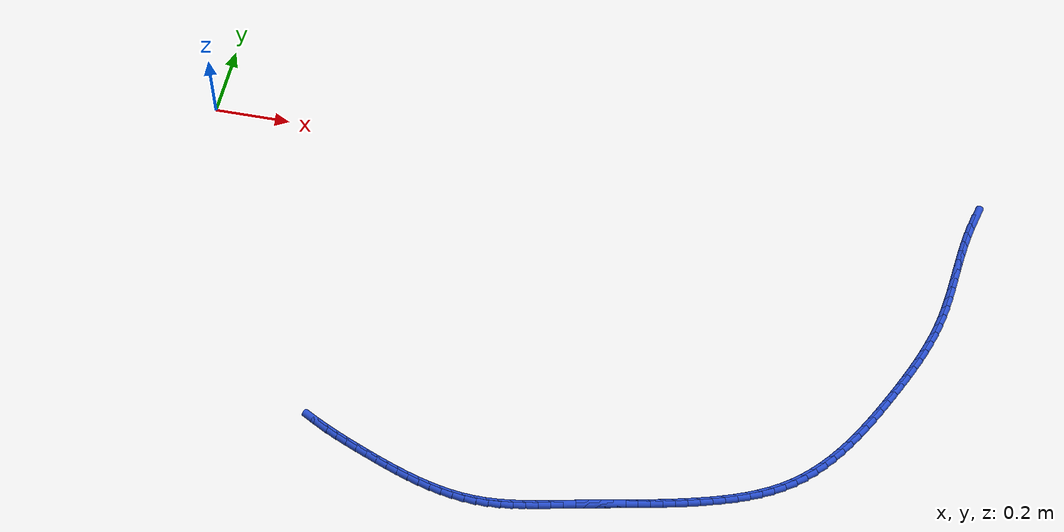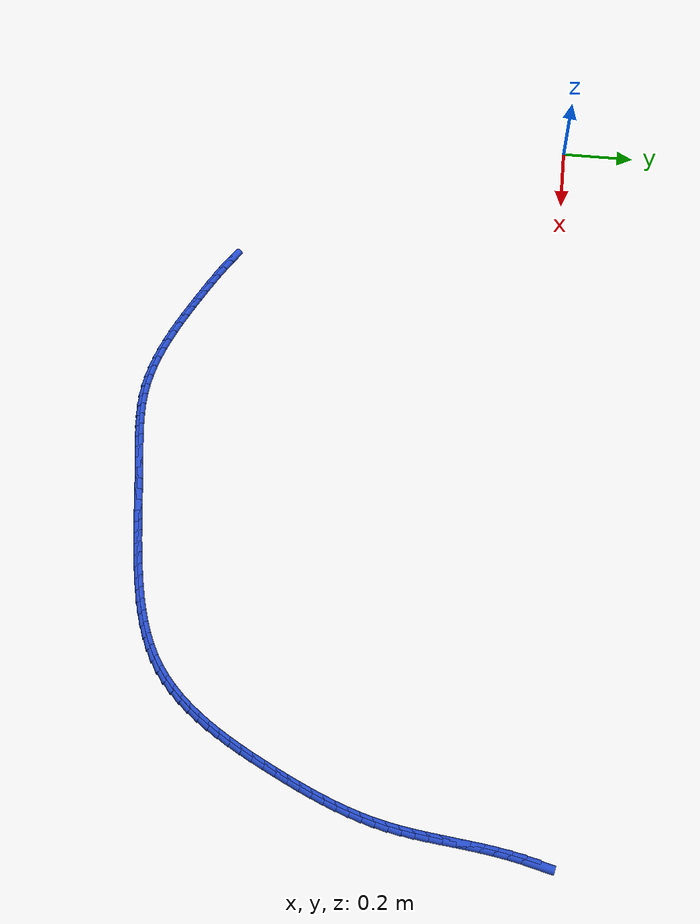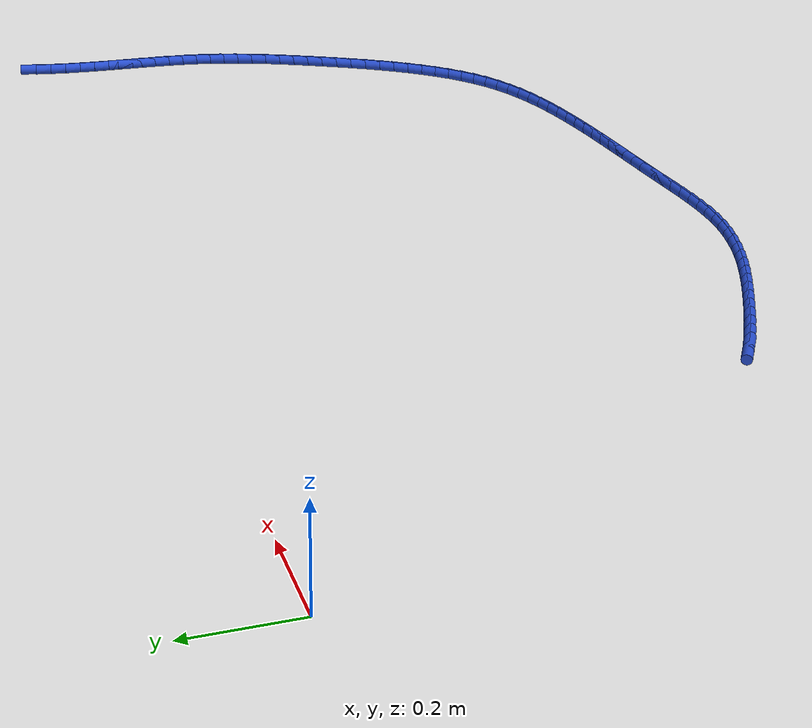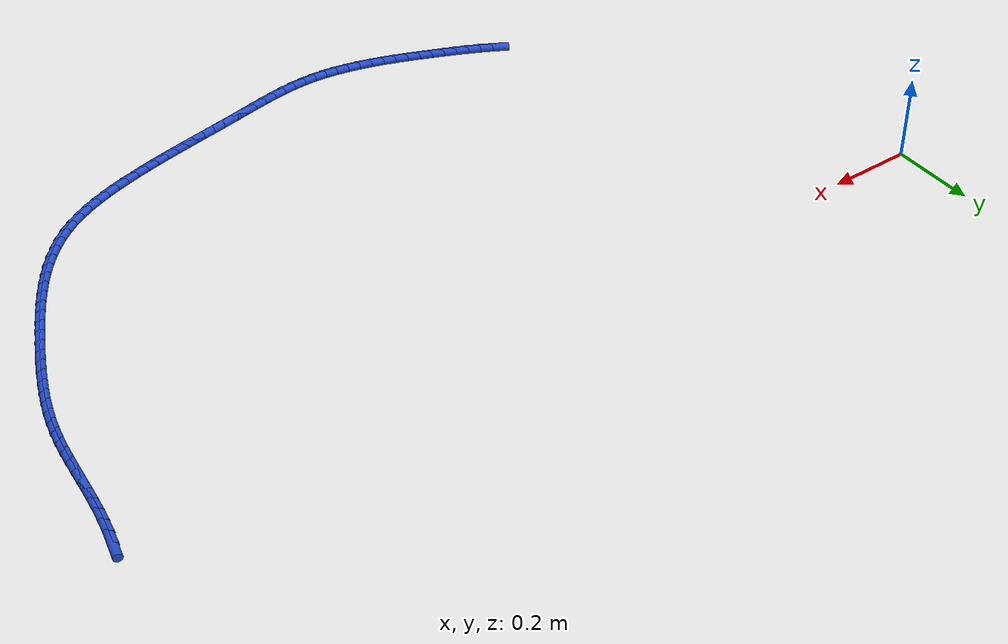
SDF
<sdf version="1.6">
 <world name="default">
  <model name="ground_plane">
   <static>1</static>
   <link name="link">
    <collision name="collision">
     <geometry><plane><normal>0 0 1</normal><size>100 100</size></plane></geometry>
     <surface><friction><ode><mu>100</mu><mu2>50</mu2></ode></friction></surface>
    </collision>
    <visual name="visual">
     <cast_shadows>0</cast_shadows>
     <geometry><plane><normal>0 0 1</normal><size>100 100</size></plane></geometry>
     <material>
      <script><uri>file://media/materials/scripts/gazebo.material</uri><name>Gazebo/WhiteGlow</name></script>
     </material>
    </visual>
   </link>
  </model>
  <model name="line">
   <link name="link_111">
    <pose>2.010761680877642 0.033383694866165735 0.01 0 1.57 1.359193978464656</pose>
    <collision name="collision">
     <geometry><cylinder><radius>0.01</radius><length>0.08</length></cylinder></geometry>
    </collision>
    <visual name="visual">
     <material>
      <script><name>Gazebo/Blue</name><uri>file://media/materials/scripts/gazebo.material</uri></script>
     </material>
     <geometry><cylinder><radius>0.01</radius><length>0.08</length></cylinder></geometry>
    </visual>
   </link>
   <link name="link_112">
    <pose>2.004196010375929 0.0028198427151513482 0.01 0 1.57 1.3987992610291267</pose>
    <collision name="collision">
     <geometry><cylinder><radius>0.01</radius><length>0.08</length></cylinder></geometry>
    </collision>
    <visual name="visual">
     <material>
      <script><name>Gazebo/Blue</name><uri>file://media/materials/scripts/gazebo.material</uri></script>
     </material>
     <geometry><cylinder><radius>0.01</radius><length>0.08</length></cylinder></geometry>
    </visual>
   </link>
   <link name="link_113">
    <pose>1.9989166863114858 -0.02757115076730311 0.01 0 1.57 1.431426548766819</pose>
    <collision name="collision">
     <geometry><cylinder><radius>0.01</radius><length>0.08</length></cylinder></geometry>
    </collision>
    <visual name="visual">
     <material>
      <script><name>Gazebo/Blue</name><uri>file://media/materials/scripts/gazebo.material</uri></script>
     </material>
     <geometry><cylinder><radius>0.01</radius><length>0.08</length></cylinder></geometry>
    </visual>
   </link>
   <link name="link_114">
    <pose>1.9946778153561573 -0.05778853523042794 0.01 0 1.57 1.456608226791528</pose>
    <collision name="collision">
     <geometry><cylinder><radius>0.01</radius><length>0.08</length></cylinder></geometry>
    </collision>
    <visual name="visual">
     <material>
      <script><name>Gazebo/Blue</name><uri>file://media/materials/scripts/gazebo.material</uri></script>
     </material>
     <geometry><cylinder><radius>0.01</radius><length>0.08</length></cylinder></geometry>
    </visual>
   </link>
   <link name="link_115">
    <pose>1.991232252472129 -0.08783172164562261 0.01 0 1.57 1.474027032831705</pose>
    <collision name="collision">
     <geometry><cylinder><radius>0.01</radius><length>0.08</length></cylinder></geometry>
    </collision>
    <visual name="visual">
     <material>
      <script><name>Gazebo/Blue</name><uri>file://media/materials/scripts/gazebo.material</uri></script>
     </material>
     <geometry><cylinder><radius>0.01</radius><length>0.08</length></cylinder></geometry>
    </visual>
   </link>
   <link name="link_116">
    <pose>1.9883328526215855 -0.11770012098428875 0.01 0 1.57 1.483443671324782</pose>
    <collision name="collision">
     <geometry><cylinder><radius>0.01</radius><length>0.08</length></cylinder></geometry>
    </collision>
    <visual name="visual">
     <material>
      <script><name>Gazebo/Blue</name><uri>file://media/materials/scripts/gazebo.material</uri></script>
     </material>
     <geometry><cylinder><radius>0.01</radius><length>0.08</length></cylinder></geometry>
    </visual>
   </link>
   <link name="link_117">
    <pose>1.9857324707667123 -0.1473931442178274 0.01 0 1.57 1.4846697103825577</pose>
    <collision name="collision">
     <geometry><cylinder><radius>0.01</radius><length>0.08</length></cylinder></geometry>
    </collision>
    <visual name="visual">
     <material>
      <script><name>Gazebo/Blue</name><uri>file://media/materials/scripts/gazebo.material</uri></script>
     </material>
     <geometry><cylinder><radius>0.01</radius><length>0.08</length></cylinder></geometry>
    </visual>
   </link>
   <link name="link_118">
    <pose>1.9831839618696931 -0.17691020231764013 0.01 0 1.57 1.477552376540685</pose>
    <collision name="collision">
     <geometry><cylinder><radius>0.01</radius><length>0.08</length></cylinder></geometry>
    </collision>
    <visual name="visual">
     <material>
      <script><name>Gazebo/Blue</name><uri>file://media/materials/scripts/gazebo.material</uri></script>
     </material>
     <geometry><cylinder><radius>0.01</radius><length>0.08</length></cylinder></geometry>
    </visual>
   </link>
   <link name="link_119">
    <pose>1.9804401808927143 -0.20625070625512643 0.01 0 1.57 1.4619744736529625</pose>
    <collision name="collision">
     <geometry><cylinder><radius>0.01</radius><length>0.08</length></cylinder></geometry>
    </collision>
    <visual name="visual">
     <material>
      <script><name>Gazebo/Blue</name><uri>file://media/materials/scripts/gazebo.material</uri></script>
     </material>
     <geometry><cylinder><radius>0.01</radius><length>0.08</length></cylinder></geometry>
    </visual>
   </link>
   <link name="link_120">
    <pose>1.9772539827979605 -0.23541406700168802 0.01 0 1.57 1.437871611948864</pose>
    <collision name="collision">
     <geometry><cylinder><radius>0.01</radius><length>0.08</length></cylinder></geometry>
    </collision>
    <visual name="visual">
     <material>
      <script><name>Gazebo/Blue</name><uri>file://media/materials/scripts/gazebo.material</uri></script>
     </material>
     <geometry><cylinder><radius>0.01</radius><length>0.08</length></cylinder></geometry>
    </visual>
   </link>
   <link name="link_121">
    <pose>1.973378222547617 -0.2643996955287259 0.01 0 1.57 1.405267717027156</pose>
    <collision name="collision">
     <geometry><cylinder><radius>0.01</radius><length>0.08</length></cylinder></geometry>
    </collision>
    <visual name="visual">
     <material>
      <script><name>Gazebo/Blue</name><uri>file://media/materials/scripts/gazebo.material</uri></script>
     </material>
     <geometry><cylinder><radius>0.01</radius><length>0.08</length></cylinder></geometry>
    </visual>
   </link>
   <link name="link_122">
    <pose>1.9685657551038684 -0.29320700280764167 0.01 0 1.57 1.365035232388028</pose>
    <collision name="collision">
     <geometry><cylinder><radius>0.01</radius><length>0.08</length></cylinder></geometry>
    </collision>
    <visual name="visual">
     <material>
      <script><name>Gazebo/Blue</name><uri>file://media/materials/scripts/gazebo.material</uri></script>
     </material>
     <geometry><cylinder><radius>0.01</radius><length>0.08</length></cylinder></geometry>
    </visual>
   </link>
   <link name="link_123">
    <pose>1.962590288352342 -0.32183680163264944 0.01 0 1.57 1.3244936096311462</pose>
    <collision name="collision">
     <geometry><cylinder><radius>0.01</radius><length>0.08</length></cylinder></geometry>
    </collision>
    <visual name="visual">
     <material>
      <script><name>Gazebo/Blue</name><uri>file://media/materials/scripts/gazebo.material</uri></script>
     </material>
     <geometry><cylinder><radius>0.01</radius><length>0.08</length></cylinder></geometry>
    </visual>
   </link>
   <link name="link_124">
    <pose>1.9554334571411836 -0.35030388253881606 0.01 0 1.57 1.287813616392894</pose>
    <collision name="collision">
     <geometry><cylinder><radius>0.01</radius><length>0.08</length></cylinder></geometry>
    </collision>
    <visual name="visual">
     <material>
      <script><name>Gazebo/Blue</name><uri>file://media/materials/scripts/gazebo.material</uri></script>
     </material>
     <geometry><cylinder><radius>0.01</radius><length>0.08</length></cylinder></geometry>
    </visual>
   </link>
   <link name="link_125">
    <pose>1.9471962969674856 -0.37863106268415303 0.01 0 1.57 1.2550672400567395</pose>
    <collision name="collision">
     <geometry><cylinder><radius>0.01</radius><length>0.08</length></cylinder></geometry>
    </collision>
    <visual name="visual">
     <material>
      <script><name>Gazebo/Blue</name><uri>file://media/materials/scripts/gazebo.material</uri></script>
     </material>
     <geometry><cylinder><radius>0.01</radius><length>0.08</length></cylinder></geometry>
    </visual>
   </link>
   <link name="link_126">
    <pose>1.9379812646465417 -0.4068412547737689 0.01 0 1.57 1.226228326327749</pose>
    <collision name="collision">
     <geometry><cylinder><radius>0.01</radius><length>0.08</length></cylinder></geometry>
    </collision>
    <visual name="visual">
     <material>
      <script><name>Gazebo/Blue</name><uri>file://media/materials/scripts/gazebo.material</uri></script>
     </material>
     <geometry><cylinder><radius>0.01</radius><length>0.08</length></cylinder></geometry>
    </visual>
   </link>
   <link name="link_127">
    <pose>1.9278908169936466 -0.4349573715127702 0.01 0 1.57 1.201236471448262</pose>
    <collision name="collision">
     <geometry><cylinder><radius>0.01</radius><length>0.08</length></cylinder></geometry>
    </collision>
    <visual name="visual">
     <material>
      <script><name>Gazebo/Blue</name><uri>file://media/materials/scripts/gazebo.material</uri></script>
     </material>
     <geometry><cylinder><radius>0.01</radius><length>0.08</length></cylinder></geometry>
    </visual>
   </link>
   <link name="link_128">
    <pose>1.9170274108240926 -0.463002325606265 0.01 0 1.57 1.1800105367871074</pose>
    <collision name="collision">
     <geometry><cylinder><radius>0.01</radius><length>0.08</length></cylinder></geometry>
    </collision>
    <visual name="visual">
     <material>
      <script><name>Gazebo/Blue</name><uri>file://media/materials/scripts/gazebo.material</uri></script>
     </material>
     <geometry><cylinder><radius>0.01</radius><length>0.08</length></cylinder></geometry>
    </visual>
   </link>
   <link name="link_129">
    <pose>1.9054935029531745 -0.4909990297593614 0.01 0 1.57 1.162459703419688</pose>
    <collision name="collision">
     <geometry><cylinder><radius>0.01</radius><length>0.08</length></cylinder></geometry>
    </collision>
    <visual name="visual">
     <material>
      <script><name>Gazebo/Blue</name><uri>file://media/materials/scripts/gazebo.material</uri></script>
     </material>
     <geometry><cylinder><radius>0.01</radius><length>0.08</length></cylinder></geometry>
    </visual>
   </link>
   <link name="link_130">
    <pose>1.893391550196186 -0.5189703966771668 0.01 0 1.57 1.1484920990986502</pose>
    <collision name="collision">
     <geometry><cylinder><radius>0.01</radius><length>0.08</length></cylinder></geometry>
    </collision>
    <visual name="visual">
     <material>
      <script><name>Gazebo/Blue</name><uri>file://media/materials/scripts/gazebo.material</uri></script>
     </material>
     <geometry><cylinder><radius>0.01</radius><length>0.08</length></cylinder></geometry>
    </visual>
   </link>
   <link name="link_131">
    <pose>1.8808240093684194 -0.5469393390647901 0.01 0 1.57 1.1376027751696676</pose>
    <collision name="collision">
     <geometry><cylinder><radius>0.01</radius><length>0.08</length></cylinder></geometry>
    </collision>
    <visual name="visual">
     <material>
      <script><name>Gazebo/Blue</name><uri>file://media/materials/scripts/gazebo.material</uri></script>
     </material>
     <geometry><cylinder><radius>0.01</radius><length>0.08</length></cylinder></geometry>
    </visual>
   </link>
   <link name="link_132">
    <pose>1.867883259562374 -0.5749198245777154 0.01 0 1.57 1.1250247893569927</pose>
    <collision name="collision">
     <geometry><cylinder><radius>0.01</radius><length>0.08</length></cylinder></geometry>
    </collision>
    <visual name="visual">
     <material>
      <script><name>Gazebo/Blue</name><uri>file://media/materials/scripts/gazebo.material</uri></script>
     </material>
     <geometry><cylinder><radius>0.01</radius><length>0.08</length></cylinder></geometry>
    </visual>
   </link>
   <link name="link_133">
    <pose>1.8545485589972046 -0.6028254140785624 0.01 0 1.57 1.1077287449365096</pose>
    <collision name="collision">
     <geometry><cylinder><radius>0.01</radius><length>0.08</length></cylinder></geometry>
    </collision>
    <visual name="visual">
     <material>
      <script><name>Gazebo/Blue</name><uri>file://media/materials/scripts/gazebo.material</uri></script>
     </material>
     <geometry><cylinder><radius>0.01</radius><length>0.08</length></cylinder></geometry>
    </visual>
   </link>
   <link name="link_134">
    <pose>1.8407280550023064 -0.630506549960587 0.01 0 1.57 1.0855269666338785</pose>
    <collision name="collision">
     <geometry><cylinder><radius>0.01</radius><length>0.08</length></cylinder></geometry>
    </collision>
    <visual name="visual">
     <material>
      <script><name>Gazebo/Blue</name><uri>file://media/materials/scripts/gazebo.material</uri></script>
     </material>
     <geometry><cylinder><radius>0.01</radius><length>0.08</length></cylinder></geometry>
    </visual>
   </link>
   <link name="link_135">
    <pose>1.8263287909905308 -0.6578126947738319 0.01 0 1.57 1.058211621669277</pose>
    <collision name="collision">
     <geometry><cylinder><radius>0.01</radius><length>0.08</length></cylinder></geometry>
    </collision>
    <visual name="visual">
     <material>
      <script><name>Gazebo/Blue</name><uri>file://media/materials/scripts/gazebo.material</uri></script>
     </material>
     <geometry><cylinder><radius>0.01</radius><length>0.08</length></cylinder></geometry>
    </visual>
   </link>
   <link name="link_136">
    <pose>1.8112578103747266 -0.6845933110683375 0.01 0 1.57 1.0255202705876838</pose>
    <collision name="collision">
     <geometry><cylinder><radius>0.01</radius><length>0.08</length></cylinder></geometry>
    </collision>
    <visual name="visual">
     <material>
      <script><name>Gazebo/Blue</name><uri>file://media/materials/scripts/gazebo.material</uri></script>
     </material>
     <geometry><cylinder><radius>0.01</radius><length>0.08</length></cylinder></geometry>
    </visual>
   </link>
   <link name="link_137">
    <pose>1.795422156567744 -0.7106978613941465 0.01 0 1.57 0.9871522497638754</pose>
    <collision name="collision">
     <geometry><cylinder><radius>0.01</radius><length>0.08</length></cylinder></geometry>
    </collision>
    <visual name="visual">
     <material>
      <script><name>Gazebo/Blue</name><uri>file://media/materials/scripts/gazebo.material</uri></script>
     </material>
     <geometry><cylinder><radius>0.01</radius><length>0.08</length></cylinder></geometry>
    </visual>
   </link>
   <link name="link_138">
    <pose>1.7787288729824324 -0.7359758083013006 0.01 0 1.57 0.9427929672748522</pose>
    <collision name="collision">
     <geometry><cylinder><radius>0.01</radius><length>0.08</length></cylinder></geometry>
    </collision>
    <visual name="visual">
     <material>
      <script><name>Gazebo/Blue</name><uri>file://media/materials/scripts/gazebo.material</uri></script>
     </material>
     <geometry><cylinder><radius>0.01</radius><length>0.08</length></cylinder></geometry>
    </visual>
   </link>
   <link name="link_139">
    <pose>1.7610850030316407 -0.7602766143398421 0.01 0 1.57 0.8921493503292335</pose>
    <collision name="collision">
     <geometry><cylinder><radius>0.01</radius><length>0.08</length></cylinder></geometry>
    </collision>
    <visual name="visual">
     <material>
      <script><name>Gazebo/Blue</name><uri>file://media/materials/scripts/gazebo.material</uri></script>
     </material>
     <geometry><cylinder><radius>0.01</radius><length>0.08</length></cylinder></geometry>
    </visual>
   </link>
   <link name="link_140">
    <pose>1.74239759012822 -0.7834497420598117 0.01 0 1.57 0.8349992931563246</pose>
    <collision name="collision">
     <geometry><cylinder><radius>0.01</radius><length>0.08</length></cylinder></geometry>
    </collision>
    <visual name="visual">
     <material>
      <script><name>Gazebo/Blue</name><uri>file://media/materials/scripts/gazebo.material</uri></script>
     </material>
     <geometry><cylinder><radius>0.01</radius><length>0.08</length></cylinder></geometry>
    </visual>
   </link>
   <link name="link_141">
    <pose>1.7225736776850191 -0.8053446540112519 0.01 0 1.57 0.7712561264326632</pose>
    <collision name="collision">
     <geometry><cylinder><radius>0.01</radius><length>0.08</length></cylinder></geometry>
    </collision>
    <visual name="visual">
     <material>
      <script><name>Gazebo/Blue</name><uri>file://media/materials/scripts/gazebo.material</uri></script>
     </material>
     <geometry><cylinder><radius>0.01</radius><length>0.08</length></cylinder></geometry>
    </visual>
   </link>
   <link name="link_142">
    <pose>1.7015203091148876 -0.8258108127442045 0.01 0 1.57 0.7010450188325282</pose>
    <collision name="collision">
     <geometry><cylinder><radius>0.01</radius><length>0.08</length></cylinder></geometry>
    </collision>
    <visual name="visual">
     <material>
      <script><name>Gazebo/Blue</name><uri>file://media/materials/scripts/gazebo.material</uri></script>
     </material>
     <geometry><cylinder><radius>0.01</radius><length>0.08</length></cylinder></geometry>
    </visual>
   </link>
   <link name="link_143">
    <pose>1.679144527830675 -0.8446976808087119 0.01 0 1.57 0.625291772787628</pose>
    <collision name="collision">
     <geometry><cylinder><radius>0.01</radius><length>0.08</length></cylinder></geometry>
    </collision>
    <visual name="visual">
     <material>
      <script><name>Gazebo/Blue</name><uri>file://media/materials/scripts/gazebo.material</uri></script>
     </material>
     <geometry><cylinder><radius>0.01</radius><length>0.08</length></cylinder></geometry>
    </visual>
   </link>
   <link name="link_144">
    <pose>1.6553636147768038 -0.8618657922442414 0.01 0 1.57 0.5521297300521181</pose>
    <collision name="collision">
     <geometry><cylinder><radius>0.01</radius><length>0.08</length></cylinder></geometry>
    </collision>
    <visual name="visual">
     <material>
      <script><name>Gazebo/Blue</name><uri>file://media/materials/scripts/gazebo.material</uri></script>
     </material>
     <geometry><cylinder><radius>0.01</radius><length>0.08</length></cylinder></geometry>
    </visual>
   </link>
   <link name="link_145">
    <pose>1.6302460519330493 -0.8773391990879796 0.01 0 1.57 0.4874852275594772</pose>
    <collision name="collision">
     <geometry><cylinder><radius>0.01</radius><length>0.08</length></cylinder></geometry>
    </collision>
    <visual name="visual">
     <material>
      <script><name>Gazebo/Blue</name><uri>file://media/materials/scripts/gazebo.material</uri></script>
     </material>
     <geometry><cylinder><radius>0.01</radius><length>0.08</length></cylinder></geometry>
    </visual>
   </link>
   <link name="link_146">
    <pose>1.6039757103139212 -0.8912667420987902 0.01 0 1.57 0.431288790943172</pose>
    <collision name="collision">
     <geometry><cylinder><radius>0.01</radius><length>0.08</length></cylinder></geometry>
    </collision>
    <visual name="visual">
     <material>
      <script><name>Gazebo/Blue</name><uri>file://media/materials/scripts/gazebo.material</uri></script>
     </material>
     <geometry><cylinder><radius>0.01</radius><length>0.08</length></cylinder></geometry>
    </visual>
   </link>
   <link name="link_147">
    <pose>1.5767393716205733 -0.9038004098291413 0.01 0 1.57 0.3831363561399249</pose>
    <collision name="collision">
     <geometry><cylinder><radius>0.01</radius><length>0.08</length></cylinder></geometry>
    </collision>
    <visual name="visual">
     <material>
      <script><name>Gazebo/Blue</name><uri>file://media/materials/scripts/gazebo.material</uri></script>
     </material>
     <geometry><cylinder><radius>0.01</radius><length>0.08</length></cylinder></geometry>
    </visual>
   </link>
   <link name="link_148">
    <pose>1.5487238175541587 -0.9150921908315008 0.01 0 1.57 0.34255091926484266</pose>
    <collision name="collision">
     <geometry><cylinder><radius>0.01</radius><length>0.08</length></cylinder></geometry>
    </collision>
    <visual name="visual">
     <material>
      <script><name>Gazebo/Blue</name><uri>file://media/materials/scripts/gazebo.material</uri></script>
     </material>
     <geometry><cylinder><radius>0.01</radius><length>0.08</length></cylinder></geometry>
    </visual>
   </link>
   <link name="link_149">
    <pose>1.5201158298158324 -0.925294073658336 0.01 0 1.57 0.30906527397214567</pose>
    <collision name="collision">
     <geometry><cylinder><radius>0.01</radius><length>0.08</length></cylinder></geometry>
    </collision>
    <visual name="visual">
     <material>
      <script><name>Gazebo/Blue</name><uri>file://media/materials/scripts/gazebo.material</uri></script>
     </material>
     <geometry><cylinder><radius>0.01</radius><length>0.08</length></cylinder></geometry>
    </visual>
   </link>
   <link name="link_150">
    <pose>1.4911021901067472 -0.934558046862115 0.01 0 1.57 0.2822771195774096</pose>
    <collision name="collision">
     <geometry><cylinder><radius>0.01</radius><length>0.08</length></cylinder></geometry>
    </collision>
    <visual name="visual">
     <material>
      <script><name>Gazebo/Blue</name><uri>file://media/materials/scripts/gazebo.material</uri></script>
     </material>
     <geometry><cylinder><radius>0.01</radius><length>0.08</length></cylinder></geometry>
    </visual>
   </link>
   <link name="link_151">
    <pose>1.461869680128057 -0.9430360989953055 0.01 0 1.57 0.2618413670720205</pose>
    <collision name="collision">
     <geometry><cylinder><radius>0.01</radius><length>0.08</length></cylinder></geometry>
    </collision>
    <visual name="visual">
     <material>
      <script><name>Gazebo/Blue</name><uri>file://media/materials/scripts/gazebo.material</uri></script>
     </material>
     <geometry><cylinder><radius>0.01</radius><length>0.08</length></cylinder></geometry>
    </visual>
   </link>
   <link name="link_152">
    <pose>1.4326027688695693 -0.9508794610602109 0.01 0 1.57 0.24597209597876932</pose>
    <collision name="collision">
     <geometry><cylinder><radius>0.01</radius><length>0.08</length></cylinder></geometry>
    </collision>
    <visual name="visual">
     <material>
      <script><name>Gazebo/Blue</name><uri>file://media/materials/scripts/gazebo.material</uri></script>
     </material>
     <geometry><cylinder><radius>0.01</radius><length>0.08</length></cylinder></geometry>
    </visual>
   </link>
   <link name="link_153">
    <pose>1.403399596800794 -0.9582110863474151 0.01 0 1.57 0.2326378516606492</pose>
    <collision name="collision">
     <geometry><cylinder><radius>0.01</radius><length>0.08</length></cylinder></geometry>
    </collision>
    <visual name="visual">
     <material>
      <script><name>Gazebo/Blue</name><uri>file://media/materials/scripts/gazebo.material</uri></script>
     </material>
     <geometry><cylinder><radius>0.01</radius><length>0.08</length></cylinder></geometry>
    </visual>
   </link>
   <link name="link_154">
    <pose>1.374248187773444 -0.9651178584226549 0.01 0 1.57 0.22179593167031555</pose>
    <collision name="collision">
     <geometry><cylinder><radius>0.01</radius><length>0.08</length></cylinder></geometry>
    </collision>
    <visual name="visual">
     <material>
      <script><name>Gazebo/Blue</name><uri>file://media/materials/scripts/gazebo.material</uri></script>
     </material>
     <geometry><cylinder><radius>0.01</radius><length>0.08</length></cylinder></geometry>
    </visual>
   </link>
   <link name="link_155">
    <pose>1.3451294067920878 -0.9716843159045379 0.01 0 1.57 0.21351749024570782</pose>
    <collision name="collision">
     <geometry><cylinder><radius>0.01</radius><length>0.08</length></cylinder></geometry>
    </collision>
    <visual name="visual">
     <material>
      <script><name>Gazebo/Blue</name><uri>file://media/materials/scripts/gazebo.material</uri></script>
     </material>
     <geometry><cylinder><radius>0.01</radius><length>0.08</length></cylinder></geometry>
    </visual>
   </link>
   <link name="link_156">
    <pose>1.316024118861292 -0.9779949974116726 0.01 0 1.57 0.20785234840782613</pose>
    <collision name="collision">
     <geometry><cylinder><radius>0.01</radius><length>0.08</length></cylinder></geometry>
    </collision>
    <visual name="visual">
     <material>
      <script><name>Gazebo/Blue</name><uri>file://media/materials/scripts/gazebo.material</uri></script>
     </material>
     <geometry><cylinder><radius>0.01</radius><length>0.08</length></cylinder></geometry>
    </visual>
   </link>
   <link name="link_157">
    <pose>1.2869131889856262 -0.9841344415626663 0.01 0 1.57 0.20482975189110564</pose>
    <collision name="collision">
     <geometry><cylinder><radius>0.01</radius><length>0.08</length></cylinder></geometry>
    </collision>
    <visual name="visual">
     <material>
      <script><name>Gazebo/Blue</name><uri>file://media/materials/scripts/gazebo.material</uri></script>
     </material>
     <geometry><cylinder><radius>0.01</radius><length>0.08</length></cylinder></geometry>
    </visual>
   </link>
   <link name="link_158">
    <pose>1.257777482169658 -0.990187186976127 0.01 0 1.57 0.2044590623258425</pose>
    <collision name="collision">
     <geometry><cylinder><radius>0.01</radius><length>0.08</length></cylinder></geometry>
    </collision>
    <visual name="visual">
     <material>
      <script><name>Gazebo/Blue</name><uri>file://media/materials/scripts/gazebo.material</uri></script>
     </material>
     <geometry><cylinder><radius>0.01</radius><length>0.08</length></cylinder></geometry>
    </visual>
   </link>
   <link name="link_159">
    <pose>1.2285978634179548 -0.9962377722706625 0.01 0 1.57 0.20673029297570927</pose>
    <collision name="collision">
     <geometry><cylinder><radius>0.01</radius><length>0.08</length></cylinder></geometry>
    </collision>
    <visual name="visual">
     <material>
      <script><name>Gazebo/Blue</name><uri>file://media/materials/scripts/gazebo.material</uri></script>
     </material>
     <geometry><cylinder><radius>0.01</radius><length>0.08</length></cylinder></geometry>
    </visual>
   </link>
   <link name="link_160">
    <pose>1.1993551977350838 -1.002370736064881 0.01 0 1.57 0.21161444446831446</pose>
    <collision name="collision">
     <geometry><cylinder><radius>0.01</radius><length>0.08</length></cylinder></geometry>
    </collision>
    <visual name="visual">
     <material>
      <script><name>Gazebo/Blue</name><uri>file://media/materials/scripts/gazebo.material</uri></script>
     </material>
     <geometry><cylinder><radius>0.01</radius><length>0.08</length></cylinder></geometry>
    </visual>
   </link>
   <link name="link_161">
    <pose>1.1700303501256148 -1.00867061697739 0.01 0 1.57 0.2174246236215959</pose>
    <collision name="collision">
     <geometry><cylinder><radius>0.01</radius><length>0.08</length></cylinder></geometry>
    </collision>
    <visual name="visual">
     <material>
      <script><name>Gazebo/Blue</name><uri>file://media/materials/scripts/gazebo.material</uri></script>
     </material>
     <geometry><cylinder><radius>0.01</radius><length>0.08</length></cylinder></geometry>
    </visual>
   </link>
   <link name="link_162">
    <pose>1.1406098850253525 -1.0151700923422668 0.01 0 1.57 0.21606293047761832</pose>
    <collision name="collision">
     <geometry><cylinder><radius>0.01</radius><length>0.08</length></cylinder></geometry>
    </collision>
    <visual name="visual">
     <material>
      <script><name>Gazebo/Blue</name><uri>file://media/materials/scripts/gazebo.material</uri></script>
     </material>
     <geometry><cylinder><radius>0.01</radius><length>0.08</length></cylinder></geometry>
    </visual>
   </link>
   <link name="link_163">
    <pose>1.1111085586662746 -1.0216453116574435 0.01 0 1.57 0.20506689964385857</pose>
    <collision name="collision">
     <geometry><cylinder><radius>0.01</radius><length>0.08</length></cylinder></geometry>
    </collision>
    <visual name="visual">
     <material>
      <script><name>Gazebo/Blue</name><uri>file://media/materials/scripts/gazebo.material</uri></script>
     </material>
     <geometry><cylinder><radius>0.01</radius><length>0.08</length></cylinder></geometry>
    </visual>
   </link>
   <link name="link_164">
    <pose>1.0815498283599119 -1.0277932500008682 0.01 0 1.57 0.18433523284112815</pose>
    <collision name="collision">
     <geometry><cylinder><radius>0.01</radius><length>0.08</length></cylinder></geometry>
    </collision>
    <visual name="visual">
     <material>
      <script><name>Gazebo/Blue</name><uri>file://media/materials/scripts/gazebo.material</uri></script>
     </material>
     <geometry><cylinder><radius>0.01</radius><length>0.08</length></cylinder></geometry>
    </visual>
   </link>
   <link name="link_165">
    <pose>1.051957153914578 -1.0333108597313245 0.01 0 1.57 0.1536358972033792</pose>
    <collision name="collision">
     <geometry><cylinder><radius>0.01</radius><length>0.08</length></cylinder></geometry>
    </collision>
    <visual name="visual">
     <material>
      <script><name>Gazebo/Blue</name><uri>file://media/materials/scripts/gazebo.material</uri></script>
     </material>
     <geometry><cylinder><radius>0.01</radius><length>0.08</length></cylinder></geometry>
    </visual>
   </link>
   <link name="link_166">
    <pose>1.0223539951385883 -1.0378950932075952 0.01 0 1.57 0.1126601259068627</pose>
    <collision name="collision">
     <geometry><cylinder><radius>0.01</radius><length>0.08</length></cylinder></geometry>
    </collision>
    <visual name="visual">
     <material>
      <script><name>Gazebo/Blue</name><uri>file://media/materials/scripts/gazebo.material</uri></script>
     </material>
     <geometry><cylinder><radius>0.01</radius><length>0.08</length></cylinder></geometry>
    </visual>
   </link>
   <link name="link_167">
    <pose>0.992763811840255 -1.0412429027884638 0.01 0 1.57 0.06111192065230087</pose>
    <collision name="collision">
     <geometry><cylinder><radius>0.01</radius><length>0.08</length></cylinder></geometry>
    </collision>
    <visual name="visual">
     <material>
      <script><name>Gazebo/Blue</name><uri>file://media/materials/scripts/gazebo.material</uri></script>
     </material>
     <geometry><cylinder><radius>0.01</radius><length>0.08</length></cylinder></geometry>
    </visual>
   </link>
   <link name="link_168">
    <pose>0.963210063827892 -1.0430512408327133 0.01 0 1.57 -0.0009992337819727665</pose>
    <collision name="collision">
     <geometry><cylinder><radius>0.01</radius><length>0.08</length></cylinder></geometry>
    </collision>
    <visual name="visual">
     <material>
      <script><name>Gazebo/Blue</name><uri>file://media/materials/scripts/gazebo.material</uri></script>
     </material>
     <geometry><cylinder><radius>0.01</radius><length>0.08</length></cylinder></geometry>
    </visual>
   </link>
   <link name="link_169">
    <pose>0.9337160871588372 -1.043021769445052 0.01 0 1.57 -0.06686929670797799</pose>
    <collision name="collision">
     <geometry><cylinder><radius>0.01</radius><length>0.08</length></cylinder></geometry>
    </collision>
    <visual name="visual">
     <material>
      <script><name>Gazebo/Blue</name><uri>file://media/materials/scripts/gazebo.material</uri></script>
     </material>
     <geometry><cylinder><radius>0.01</radius><length>0.08</length></cylinder></geometry>
    </visual>
   </link>
   <link name="link_170">
    <pose>0.9043000769899228 -1.0410518044227048 0.01 0 1.57 -0.12722873131344295</pose>
    <collision name="collision">
     <geometry><cylinder><radius>0.01</radius><length>0.08</length></cylinder></geometry>
    </collision>
    <visual name="visual">
     <material>
      <script><name>Gazebo/Blue</name><uri>file://media/materials/scripts/gazebo.material</uri></script>
     </material>
     <geometry><cylinder><radius>0.01</radius><length>0.08</length></cylinder></geometry>
    </visual>
   </link>
   <link name="link_171">
    <pose>0.8749733527756011 -1.0373003387839939 0.01 0 1.57 -0.18123695204660267</pose>
    <collision name="collision">
     <geometry><cylinder><radius>0.01</radius><length>0.08</length></cylinder></geometry>
    </collision>
    <visual name="visual">
     <material>
      <script><name>Gazebo/Blue</name><uri>file://media/materials/scripts/gazebo.material</uri></script>
     </material>
     <geometry><cylinder><radius>0.01</radius><length>0.08</length></cylinder></geometry>
    </visual>
   </link>
   <link name="link_172">
    <pose>0.8457467540374863 -1.0319446309526727 0.01 0 1.57 -0.22887503124229064</pose>
    <collision name="collision">
     <geometry><cylinder><radius>0.01</radius><length>0.08</length></cylinder></geometry>
    </collision>
    <visual name="visual">
     <material>
      <script><name>Gazebo/Blue</name><uri>file://media/materials/scripts/gazebo.material</uri></script>
     </material>
     <geometry><cylinder><radius>0.01</radius><length>0.08</length></cylinder></geometry>
    </visual>
   </link>
   <link name="link_173">
    <pose>0.8166311202971924 -1.025161939352494 0.01 0 1.57 -0.27026071861488604</pose>
    <collision name="collision">
     <geometry><cylinder><radius>0.01</radius><length>0.08</length></cylinder></geometry>
    </collision>
    <visual name="visual">
     <material>
      <script><name>Gazebo/Blue</name><uri>file://media/materials/scripts/gazebo.material</uri></script>
     </material>
     <geometry><cylinder><radius>0.01</radius><length>0.08</length></cylinder></geometry>
    </visual>
   </link>
   <link name="link_174">
    <pose>0.7876372910763352 -1.0171295224072117 0.01 0 1.57 -0.30558978355702315</pose>
    <collision name="collision">
     <geometry><cylinder><radius>0.01</radius><length>0.08</length></cylinder></geometry>
    </collision>
    <visual name="visual">
     <material>
      <script><name>Gazebo/Blue</name><uri>file://media/materials/scripts/gazebo.material</uri></script>
     </material>
     <geometry><cylinder><radius>0.01</radius><length>0.08</length></cylinder></geometry>
    </visual>
   </link>
   <link name="link_175">
    <pose>0.7587761058965286 -1.0080246385405793 0.01 0 1.57 -0.33508863834121155</pose>
    <collision name="collision">
     <geometry><cylinder><radius>0.01</radius><length>0.08</length></cylinder></geometry>
    </collision>
    <visual name="visual">
     <material>
      <script><name>Gazebo/Blue</name><uri>file://media/materials/scripts/gazebo.material</uri></script>
     </material>
     <geometry><cylinder><radius>0.01</radius><length>0.08</length></cylinder></geometry>
    </visual>
   </link>
   <link name="link_176">
    <pose>0.7300584042793864 -0.9980245461763501 0.01 0 1.57 -0.3589786180374503</pose>
    <collision name="collision">
     <geometry><cylinder><radius>0.01</radius><length>0.08</length></cylinder></geometry>
    </collision>
    <visual name="visual">
     <material>
      <script><name>Gazebo/Blue</name><uri>file://media/materials/scripts/gazebo.material</uri></script>
     </material>
     <geometry><cylinder><radius>0.01</radius><length>0.08</length></cylinder></geometry>
    </visual>
   </link>
   <link name="link_177">
    <pose>0.7014950257465237 -0.9873065037382771 0.01 0 1.57 -0.3774502450477538</pose>
    <collision name="collision">
     <geometry><cylinder><radius>0.01</radius><length>0.08</length></cylinder></geometry>
    </collision>
    <visual name="visual">
     <material>
      <script><name>Gazebo/Blue</name><uri>file://media/materials/scripts/gazebo.material</uri></script>
     </material>
     <geometry><cylinder><radius>0.01</radius><length>0.08</length></cylinder></geometry>
    </visual>
   </link>
   <link name="link_178">
    <pose>0.6730968098195534 -0.9760477696501138 0.01 0 1.57 -0.3906450877222605</pose>
    <collision name="collision">
     <geometry><cylinder><radius>0.01</radius><length>0.08</length></cylinder></geometry>
    </collision>
    <visual name="visual">
     <material>
      <script><name>Gazebo/Blue</name><uri>file://media/materials/scripts/gazebo.material</uri></script>
     </material>
     <geometry><cylinder><radius>0.01</radius><length>0.08</length></cylinder></geometry>
    </visual>
   </link>
   <link name="link_179">
    <pose>0.6448745960200922 -0.9644256023356143 0.01 0 1.57 -0.3997452297454123</pose>
    <collision name="collision">
     <geometry><cylinder><radius>0.01</radius><length>0.08</length></cylinder></geometry>
    </collision>
    <visual name="visual">
     <material>
      <script><name>Gazebo/Blue</name><uri>file://media/materials/scripts/gazebo.material</uri></script>
     </material>
     <geometry><cylinder><radius>0.01</radius><length>0.08</length></cylinder></geometry>
    </visual>
   </link>
   <link name="link_180">
    <pose>0.6168461952978982 -0.952583800922414 0.01 0 1.57 -0.41117072315563175</pose>
    <collision name="collision">
     <geometry><cylinder><radius>0.01</radius><length>0.08</length></cylinder></geometry>
    </collision>
    <visual name="visual">
     <material>
      <script><name>Gazebo/Blue</name><uri>file://media/materials/scripts/gazebo.material</uri></script>
     </material>
     <geometry><cylinder><radius>0.01</radius><length>0.08</length></cylinder></geometry>
    </visual>
   </link>
   <link name="link_181">
    <pose>0.5890697470384001 -0.9404726086349819 0.01 0 1.57 -0.4272808607266876</pose>
    <collision name="collision">
     <geometry><cylinder><radius>0.01</radius><length>0.08</length></cylinder></geometry>
    </collision>
    <visual name="visual">
     <material>
      <script><name>Gazebo/Blue</name><uri>file://media/materials/scripts/gazebo.material</uri></script>
     </material>
     <geometry><cylinder><radius>0.01</radius><length>0.08</length></cylinder></geometry>
    </visual>
   </link>
   <link name="link_182">
    <pose>0.5616178587360465 -0.9279728291605915 0.01 0 1.57 -0.4481625149079499</pose>
    <collision name="collision">
     <geometry><cylinder><radius>0.01</radius><length>0.08</length></cylinder></geometry>
    </collision>
    <visual name="visual">
     <material>
      <script><name>Gazebo/Blue</name><uri>file://media/materials/scripts/gazebo.material</uri></script>
     </material>
     <geometry><cylinder><radius>0.01</radius><length>0.08</length></cylinder></geometry>
    </visual>
   </link>
   <link name="link_183">
    <pose>0.5345631565551 -0.9149651765809496 0.01 0 1.57 -0.4738970442469969</pose>
    <collision name="collision">
     <geometry><cylinder><radius>0.01</radius><length>0.08</length></cylinder></geometry>
    </collision>
    <visual name="visual">
     <material>
      <script><name>Gazebo/Blue</name><uri>file://media/materials/scripts/gazebo.material</uri></script>
     </material>
     <geometry><cylinder><radius>0.01</radius><length>0.08</length></cylinder></geometry>
    </visual>
   </link>
   <link name="link_184">
    <pose>0.5079782666598215 -0.9013303649777628 0.01 0 1.57 -0.504548793833382</pose>
    <collision name="collision">
     <geometry><cylinder><radius>0.01</radius><length>0.08</length></cylinder></geometry>
    </collision>
    <visual name="visual">
     <material>
      <script><name>Gazebo/Blue</name><uri>file://media/materials/scripts/gazebo.material</uri></script>
     </material>
     <geometry><cylinder><radius>0.01</radius><length>0.08</length></cylinder></geometry>
    </visual>
   </link>
  </model>
 </world>
</sdf>
